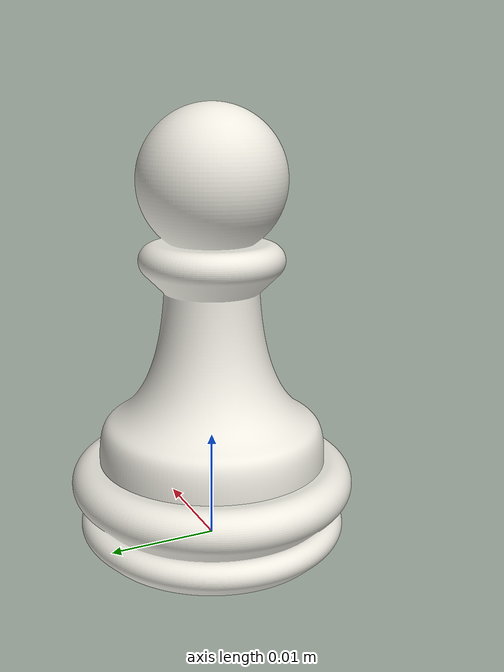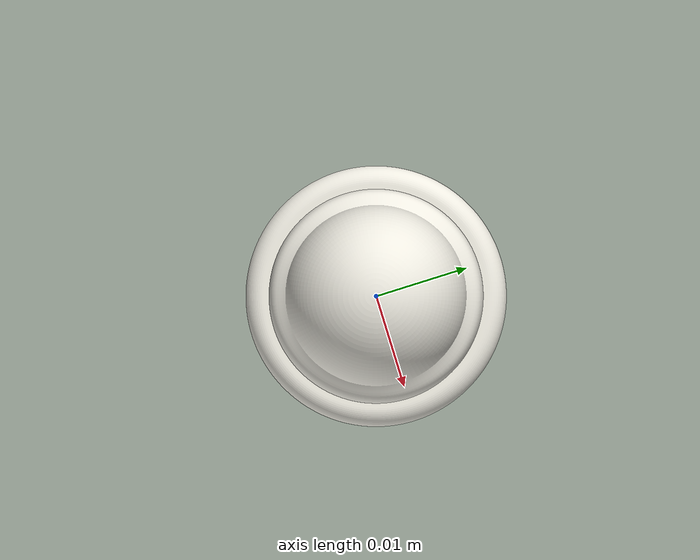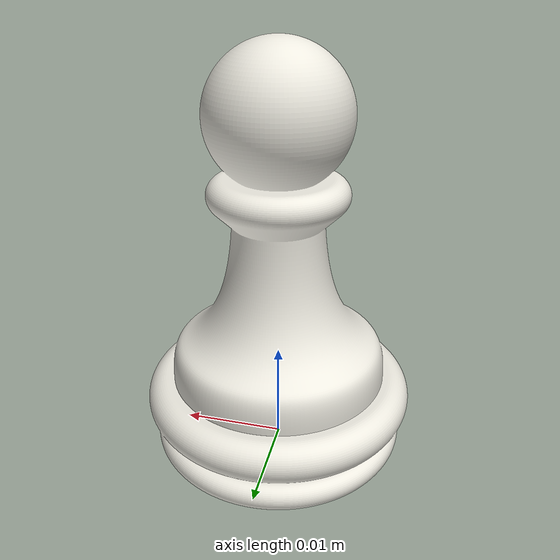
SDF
<?xml version="1.0"?>
<sdf version="1.9">
  <model name="white_pawn">
    <static>false</static>
    <link name="piece">
      <inertial>
        <mass>0.035</mass>
        <inertia>
          <ixx>0.000010</ixx>
          <iyy>0.000010</iyy>
          <izz>0.000006</izz>
        </inertia>
      </inertial>
      <collision name="collision">
        <pose>0 0 0.020 0 0 0</pose>
        <geometry>
          <cylinder>
            <radius>0.014</radius>
            <length>0.040</length>
          </cylinder>
        </geometry>
      </collision>
      <visual name="visual">
        <geometry>
          <mesh>
            <uri>model://chess_piece_meshes/meshes/pawn.stl</uri>
            <scale>0.001 0.001 0.001</scale>
          </mesh>
        </geometry>
        <material>
          <ambient>0.93 0.92 0.88 1</ambient>
          <diffuse>0.93 0.92 0.88 1</diffuse>
          <specular>0.20 0.20 0.20 1</specular>
        </material>
      </visual>
    </link>
  </model>
</sdf>
